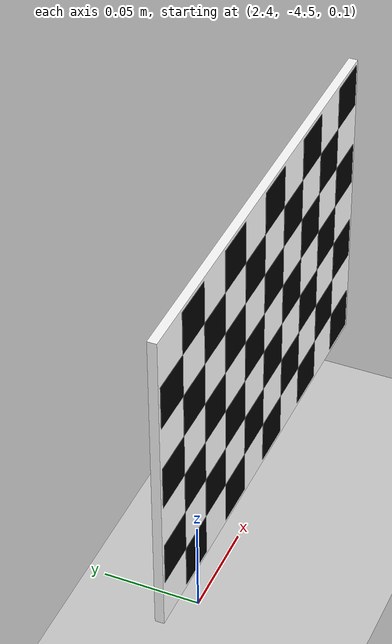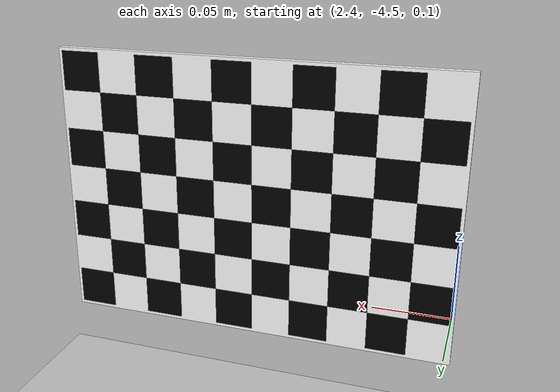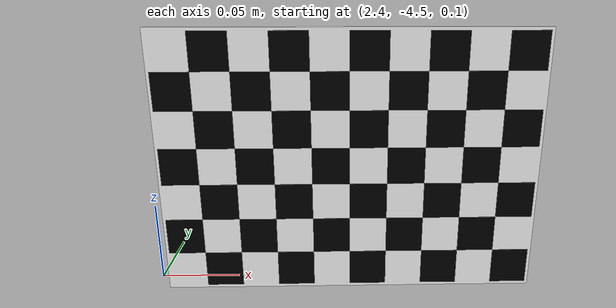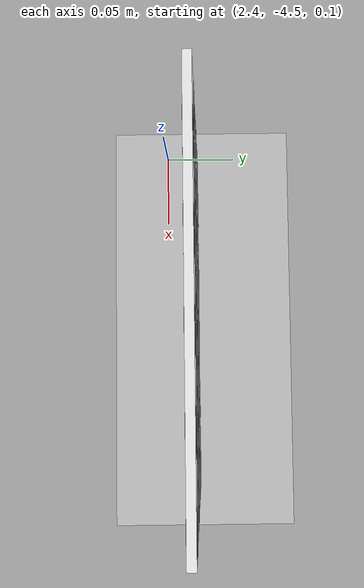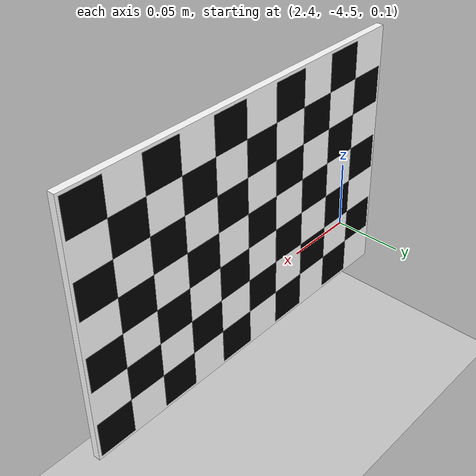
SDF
<sdf version='1.10'>
  <world name='empty'>
    <physics name='1ms' type='ignored'>
      <max_step_size>0.001</max_step_size>
      <real_time_factor>1</real_time_factor>
      <real_time_update_rate>1000</real_time_update_rate>
    </physics>
    <plugin name='gz::sim::systems::Physics' filename='gz-sim-physics-system'/>
    <plugin name='gz::sim::systems::UserCommands' filename='gz-sim-user-commands-system'/>
    <plugin name='gz::sim::systems::SceneBroadcaster' filename='gz-sim-scene-broadcaster-system'/>
    <plugin name='gz::sim::systems::Contact' filename='gz-sim-contact-system'/>
    <gravity>0 0 -9.8000000000000007</gravity>
    <magnetic_field>5.5644999999999998e-06 2.2875799999999999e-05 -4.2388400000000002e-05</magnetic_field>
    <atmosphere type='adiabatic'/>
    <scene>
      <ambient>0.400000006 0.400000006 0.400000006 1</ambient>
      <background>0.699999988 0.699999988 0.699999988 1</background>
      <shadows>true</shadows>
    </scene>
    <model name='ground_plane'>
      <static>true</static>
      <link name='link'>
        <collision name='collision'>
          <geometry>
            <plane>
              <normal>0 0 1</normal>
              <size>100 100</size>
            </plane>
          </geometry>
          <surface>
            <friction>
              <ode/>
            </friction>
            <bounce/>
            <contact/>
          </surface>
        </collision>
        <visual name='visual'>
          <geometry>
            <plane>
              <normal>0 0 1</normal>
              <size>100 100</size>
            </plane>
          </geometry>
          <material>
            <ambient>0.800000012 0.800000012 0.800000012 1</ambient>
            <diffuse>0.800000012 0.800000012 0.800000012 1</diffuse>
            <specular>0.800000012 0.800000012 0.800000012 1</specular>
          </material>
        </visual>
        <pose>0 0 0 0 0 0</pose>
        <inertial>
          <pose>0 0 0 0 0 0</pose>
          <mass>1</mass>
          <inertia>
            <ixx>1</ixx>
            <ixy>0</ixy>
            <ixz>0</ixz>
            <iyy>1</iyy>
            <iyz>0</iyz>
            <izz>1</izz>
          </inertia>
        </inertial>
        <enable_wind>false</enable_wind>
      </link>
      <pose>0 0 0 0 0 0</pose>
      <self_collide>false</self_collide>
    </model>
    <include>
      <uri>file:///home/dcx/four_arm_robot/src/my_robot_bringup/models/calibration_checkerboard</uri>
      <name>calibration_checkerboard</name>
      <pose>2.5243699550628662 -4.480140209197998 0.17037871479988098 0 0 0</pose>
    </include>
    <light name='sun' type='directional'>
      <pose>0 0 10 0 0 0</pose>
      <cast_shadows>true</cast_shadows>
      <intensity>1</intensity>
      <direction>-0.5 0.10000000000000001 -0.90000000000000002</direction>
      <diffuse>0.800000012 0.800000012 0.800000012 1</diffuse>
      <specular>0.200000003 0.200000003 0.200000003 1</specular>
      <attenuation>
        <range>1000</range>
        <linear>0.01</linear>
        <constant>0.90000000000000002</constant>
        <quadratic>0.001</quadratic>
      </attenuation>
      <spot>
        <inner_angle>0</inner_angle>
        <outer_angle>0</outer_angle>
        <falloff>0</falloff>
      </spot>
    </light>
  </world>
</sdf>

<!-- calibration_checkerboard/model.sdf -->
<sdf version="1.7">
  <model name="calibration_checkerboard">
    <static>true</static>
    <link name="board">
      <pose>0 0 0 0 0 0</pose>
      <visual name="board_white">
        <geometry>
          <box>
            <size>0.254 0.005 0.179</size>
          </box>
        </geometry>
        <material>
          <ambient>1 1 1 1</ambient>
          <diffuse>1 1 1 1</diffuse>
          <specular>0 0 0 1</specular>
        </material>
      </visual>
      <visual name="black_square_r0_c1"><pose>-0.0875 0 0.075 0 0 0</pose><geometry><box><size>0.025 0.0054 0.025</size></box></geometry><material><ambient>0 0 0 1</ambient><diffuse>0 0 0 1</diffuse><specular>0 0 0 1</specular></material></visual>
      <visual name="black_square_r0_c3"><pose>-0.0375 0 0.075 0 0 0</pose><geometry><box><size>0.025 0.0054 0.025</size></box></geometry><material><ambient>0 0 0 1</ambient><diffuse>0 0 0 1</diffuse><specular>0 0 0 1</specular></material></visual>
      <visual name="black_square_r0_c5"><pose>0.0125 0 0.075 0 0 0</pose><geometry><box><size>0.025 0.0054 0.025</size></box></geometry><material><ambient>0 0 0 1</ambient><diffuse>0 0 0 1</diffuse><specular>0 0 0 1</specular></material></visual>
      <visual name="black_square_r0_c7"><pose>0.0625 0 0.075 0 0 0</pose><geometry><box><size>0.025 0.0054 0.025</size></box></geometry><material><ambient>0 0 0 1</ambient><diffuse>0 0 0 1</diffuse><specular>0 0 0 1</specular></material></visual>
      <visual name="black_square_r0_c9"><pose>0.1125 0 0.075 0 0 0</pose><geometry><box><size>0.025 0.0054 0.025</size></box></geometry><material><ambient>0 0 0 1</ambient><diffuse>0 0 0 1</diffuse><specular>0 0 0 1</specular></material></visual>
      <visual name="black_square_r1_c0"><pose>-0.1125 0 0.05 0 0 0</pose><geometry><box><size>0.025 0.0054 0.025</size></box></geometry><material><ambient>0 0 0 1</ambient><diffuse>0 0 0 1</diffuse><specular>0 0 0 1</specular></material></visual>
      <visual name="black_square_r1_c2"><pose>-0.0625 0 0.05 0 0 0</pose><geometry><box><size>0.025 0.0054 0.025</size></box></geometry><material><ambient>0 0 0 1</ambient><diffuse>0 0 0 1</diffuse><specular>0 0 0 1</specular></material></visual>
      <visual name="black_square_r1_c4"><pose>-0.0125 0 0.05 0 0 0</pose><geometry><box><size>0.025 0.0054 0.025</size></box></geometry><material><ambient>0 0 0 1</ambient><diffuse>0 0 0 1</diffuse><specular>0 0 0 1</specular></material></visual>
      <visual name="black_square_r1_c6"><pose>0.0375 0 0.05 0 0 0</pose><geometry><box><size>0.025 0.0054 0.025</size></box></geometry><material><ambient>0 0 0 1</ambient><diffuse>0 0 0 1</diffuse><specular>0 0 0 1</specular></material></visual>
      <visual name="black_square_r1_c8"><pose>0.0875 0 0.05 0 0 0</pose><geometry><box><size>0.025 0.0054 0.025</size></box></geometry><material><ambient>0 0 0 1</ambient><diffuse>0 0 0 1</diffuse><specular>0 0 0 1</specular></material></visual>
      <visual name="black_square_r2_c1"><pose>-0.0875 0 0.025 0 0 0</pose><geometry><box><size>0.025 0.0054 0.025</size></box></geometry><material><ambient>0 0 0 1</ambient><diffuse>0 0 0 1</diffuse><specular>0 0 0 1</specular></material></visual>
      <visual name="black_square_r2_c3"><pose>-0.0375 0 0.025 0 0 0</pose><geometry><box><size>0.025 0.0054 0.025</size></box></geometry><material><ambient>0 0 0 1</ambient><diffuse>0 0 0 1</diffuse><specular>0 0 0 1</specular></material></visual>
      <visual name="black_square_r2_c5"><pose>0.0125 0 0.025 0 0 0</pose><geometry><box><size>0.025 0.0054 0.025</size></box></geometry><material><ambient>0 0 0 1</ambient><diffuse>0 0 0 1</diffuse><specular>0 0 0 1</specular></material></visual>
      <visual name="black_square_r2_c7"><pose>0.0625 0 0.025 0 0 0</pose><geometry><box><size>0.025 0.0054 0.025</size></box></geometry><material><ambient>0 0 0 1</ambient><diffuse>0 0 0 1</diffuse><specular>0 0 0 1</specular></material></visual>
      <visual name="black_square_r2_c9"><pose>0.1125 0 0.025 0 0 0</pose><geometry><box><size>0.025 0.0054 0.025</size></box></geometry><material><ambient>0 0 0 1</ambient><diffuse>0 0 0 1</diffuse><specular>0 0 0 1</specular></material></visual>
      <visual name="black_square_r3_c0"><pose>-0.1125 0 0 0 0 0</pose><geometry><box><size>0.025 0.0054 0.025</size></box></geometry><material><ambient>0 0 0 1</ambient><diffuse>0 0 0 1</diffuse><specular>0 0 0 1</specular></material></visual>
      <visual name="black_square_r3_c2"><pose>-0.0625 0 0 0 0 0</pose><geometry><box><size>0.025 0.0054 0.025</size></box></geometry><material><ambient>0 0 0 1</ambient><diffuse>0 0 0 1</diffuse><specular>0 0 0 1</specular></material></visual>
      <visual name="black_square_r3_c4"><pose>-0.0125 0 0 0 0 0</pose><geometry><box><size>0.025 0.0054 0.025</size></box></geometry><material><ambient>0 0 0 1</ambient><diffuse>0 0 0 1</diffuse><specular>0 0 0 1</specular></material></visual>
      <visual name="black_square_r3_c6"><pose>0.0375 0 0 0 0 0</pose><geometry><box><size>0.025 0.0054 0.025</size></box></geometry><material><ambient>0 0 0 1</ambient><diffuse>0 0 0 1</diffuse><specular>0 0 0 1</specular></material></visual>
      <visual name="black_square_r3_c8"><pose>0.0875 0 0 0 0 0</pose><geometry><box><size>0.025 0.0054 0.025</size></box></geometry><material><ambient>0 0 0 1</ambient><diffuse>0 0 0 1</diffuse><specular>0 0 0 1</specular></material></visual>
      <visual name="black_square_r4_c1"><pose>-0.0875 0 -0.025 0 0 0</pose><geometry><box><size>0.025 0.0054 0.025</size></box></geometry><material><ambient>0 0 0 1</ambient><diffuse>0 0 0 1</diffuse><specular>0 0 0 1</specular></material></visual>
      <visual name="black_square_r4_c3"><pose>-0.0375 0 -0.025 0 0 0</pose><geometry><box><size>0.025 0.0054 0.025</size></box></geometry><material><ambient>0 0 0 1</ambient><diffuse>0 0 0 1</diffuse><specular>0 0 0 1</specular></material></visual>
      <visual name="black_square_r4_c5"><pose>0.0125 0 -0.025 0 0 0</pose><geometry><box><size>0.025 0.0054 0.025</size></box></geometry><material><ambient>0 0 0 1</ambient><diffuse>0 0 0 1</diffuse><specular>0 0 0 1</specular></material></visual>
      <visual name="black_square_r4_c7"><pose>0.0625 0 -0.025 0 0 0</pose><geometry><box><size>0.025 0.0054 0.025</size></box></geometry><material><ambient>0 0 0 1</ambient><diffuse>0 0 0 1</diffuse><specular>0 0 0 1</specular></material></visual>
      <visual name="black_square_r4_c9"><pose>0.1125 0 -0.025 0 0 0</pose><geometry><box><size>0.025 0.0054 0.025</size></box></geometry><material><ambient>0 0 0 1</ambient><diffuse>0 0 0 1</diffuse><specular>0 0 0 1</specular></material></visual>
      <visual name="black_square_r5_c0"><pose>-0.1125 0 -0.05 0 0 0</pose><geometry><box><size>0.025 0.0054 0.025</size></box></geometry><material><ambient>0 0 0 1</ambient><diffuse>0 0 0 1</diffuse><specular>0 0 0 1</specular></material></visual>
      <visual name="black_square_r5_c2"><pose>-0.0625 0 -0.05 0 0 0</pose><geometry><box><size>0.025 0.0054 0.025</size></box></geometry><material><ambient>0 0 0 1</ambient><diffuse>0 0 0 1</diffuse><specular>0 0 0 1</specular></material></visual>
      <visual name="black_square_r5_c4"><pose>-0.0125 0 -0.05 0 0 0</pose><geometry><box><size>0.025 0.0054 0.025</size></box></geometry><material><ambient>0 0 0 1</ambient><diffuse>0 0 0 1</diffuse><specular>0 0 0 1</specular></material></visual>
      <visual name="black_square_r5_c6"><pose>0.0375 0 -0.05 0 0 0</pose><geometry><box><size>0.025 0.0054 0.025</size></box></geometry><material><ambient>0 0 0 1</ambient><diffuse>0 0 0 1</diffuse><specular>0 0 0 1</specular></material></visual>
      <visual name="black_square_r5_c8"><pose>0.0875 0 -0.05 0 0 0</pose><geometry><box><size>0.025 0.0054 0.025</size></box></geometry><material><ambient>0 0 0 1</ambient><diffuse>0 0 0 1</diffuse><specular>0 0 0 1</specular></material></visual>
      <visual name="black_square_r6_c1"><pose>-0.0875 0 -0.075 0 0 0</pose><geometry><box><size>0.025 0.0054 0.025</size></box></geometry><material><ambient>0 0 0 1</ambient><diffuse>0 0 0 1</diffuse><specular>0 0 0 1</specular></material></visual>
      <visual name="black_square_r6_c3"><pose>-0.0375 0 -0.075 0 0 0</pose><geometry><box><size>0.025 0.0054 0.025</size></box></geometry><material><ambient>0 0 0 1</ambient><diffuse>0 0 0 1</diffuse><specular>0 0 0 1</specular></material></visual>
      <visual name="black_square_r6_c5"><pose>0.0125 0 -0.075 0 0 0</pose><geometry><box><size>0.025 0.0054 0.025</size></box></geometry><material><ambient>0 0 0 1</ambient><diffuse>0 0 0 1</diffuse><specular>0 0 0 1</specular></material></visual>
      <visual name="black_square_r6_c7"><pose>0.0625 0 -0.075 0 0 0</pose><geometry><box><size>0.025 0.0054 0.025</size></box></geometry><material><ambient>0 0 0 1</ambient><diffuse>0 0 0 1</diffuse><specular>0 0 0 1</specular></material></visual>
      <visual name="black_square_r6_c9"><pose>0.1125 0 -0.075 0 0 0</pose><geometry><box><size>0.025 0.0054 0.025</size></box></geometry><material><ambient>0 0 0 1</ambient><diffuse>0 0 0 1</diffuse><specular>0 0 0 1</specular></material></visual>
      <collision name="collision">
        <geometry>
          <box>
            <size>0.254 0.005 0.179</size>
          </box>
        </geometry>
      </collision>
      <inertial>
        <mass>0.2</mass>
        <inertia>
          <ixx>0.001</ixx>
          <ixy>0</ixy>
          <ixz>0</ixz>
          <iyy>0.001</iyy>
          <iyz>0</iyz>
          <izz>0.001</izz>
        </inertia>
      </inertial>
    </link>
  </model>
</sdf>
